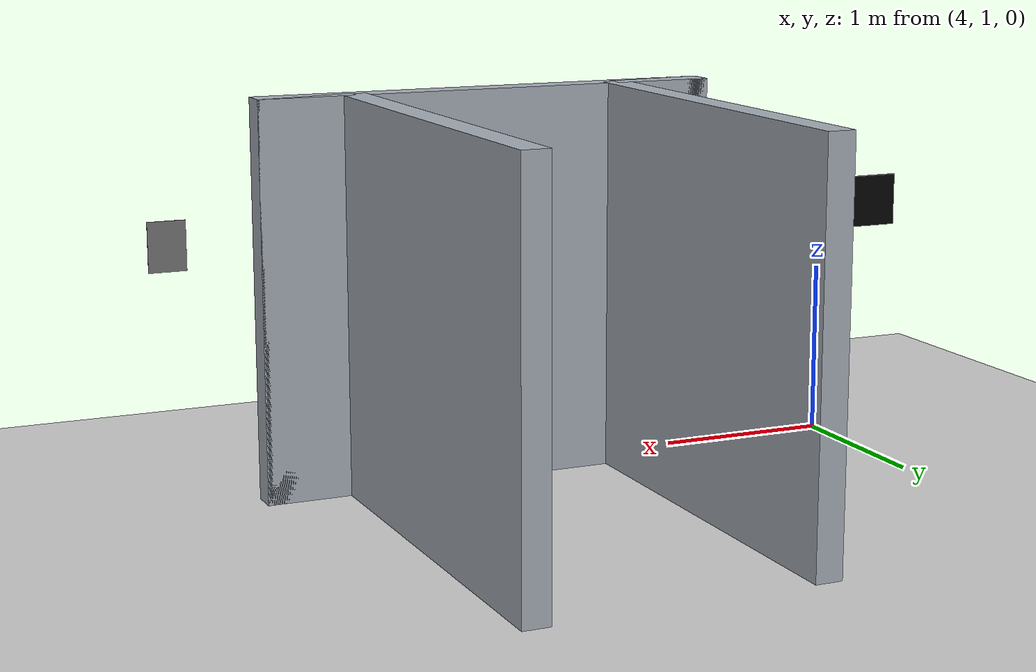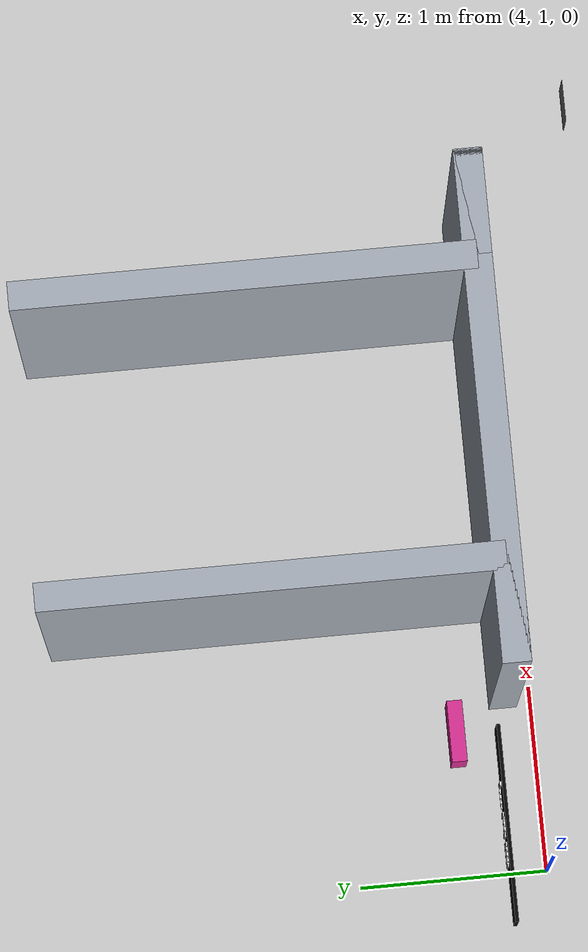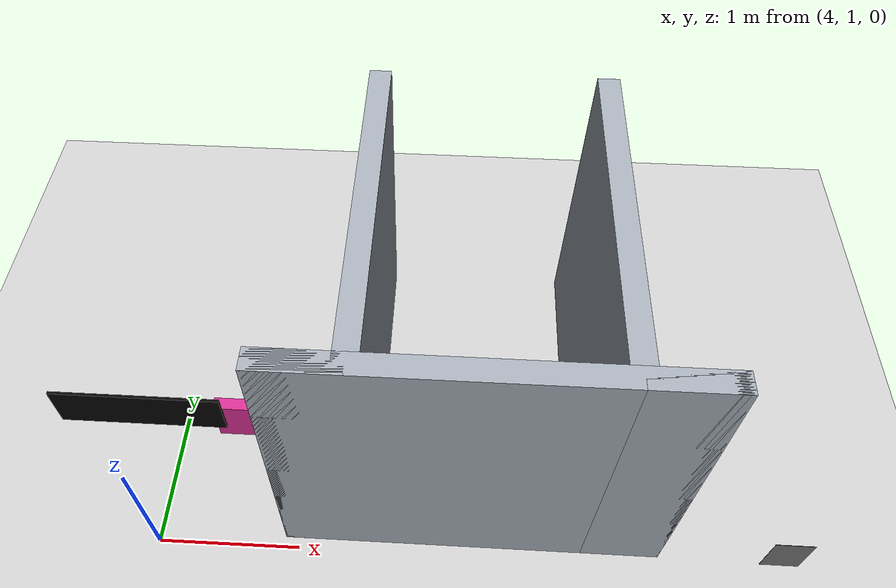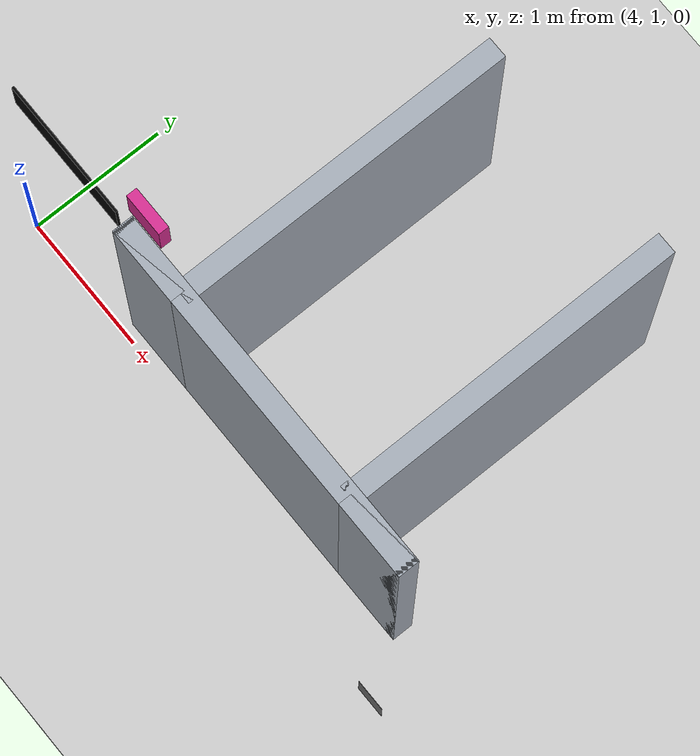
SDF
<sdf version="1.9">
 <world name="default">
  <model name="ground_plane">
   <static>true</static>
   <pose>5.15 0 -0.05 0 0 0</pose>
   <link name="body">
    <collision name="collision"><geometry><box><size>14.3 12 0.1</size></box></geometry></collision>
    <visual name="visual">
     <geometry><box><size>14.3 12 0.1</size></box></geometry>
     <material><ambient>0.8 0.8 0.8 1</ambient><diffuse>0.8 0.8 0.8 1</diffuse></material>
    </visual>
   </link>
  </model>
  <model name="room_1_1_1">
   <static>true</static>
   <pose>5.45 2.3499999999999996 1.1 0 0 0</pose>
   <link name="body">
    <collision name="collision"><geometry><box><size>0.15 2.4 2.2</size></box></geometry></collision>
    <visual name="visual">
     <geometry><box><size>0.15 2.4 2.2</size></box></geometry>
     <material><ambient>0.65 0.68 0.72 1</ambient><diffuse>0.65 0.68 0.72 1</diffuse></material>
    </visual>
   </link>
  </model>
  <model name="jamb_1_1_1">
   <static>true</static>
   <pose>5.175000000000001 1.15 1.1 0 0 0</pose>
   <link name="body">
    <collision name="collision"><geometry><box><size>0.55 0.15 2.2</size></box></geometry></collision>
    <visual name="visual">
     <geometry><box><size>0.55 0.15 2.2</size></box></geometry>
     <material><ambient>0.65 0.68 0.72 1</ambient><diffuse>0.65 0.68 0.72 1</diffuse></material>
    </visual>
   </link>
  </model>
  <model name="hall_1_2">
   <static>true</static>
   <pose>6.2250000000000005 1.15 1.1 0 0 0</pose>
   <link name="body">
    <collision name="collision">
     <geometry><box><size>2.6500000000000004 0.15 2.2</size></box></geometry>
    </collision>
    <visual name="visual">
     <geometry><box><size>2.6500000000000004 0.15 2.2</size></box></geometry>
     <material><ambient>0.65 0.68 0.72 1</ambient><diffuse>0.65 0.68 0.72 1</diffuse></material>
    </visual>
   </link>
  </model>
  <model name="room_1_2_-1">
   <static>true</static>
   <pose>7.000000000000001 2.3499999999999996 1.1 0 0 0</pose>
   <link name="body">
    <collision name="collision"><geometry><box><size>0.15 2.4 2.2</size></box></geometry></collision>
    <visual name="visual">
     <geometry><box><size>0.15 2.4 2.2</size></box></geometry>
     <material><ambient>0.65 0.68 0.72 1</ambient><diffuse>0.65 0.68 0.72 1</diffuse></material>
    </visual>
   </link>
  </model>
  <model name="jamb_1_2_-1">
   <static>true</static>
   <pose>7.275 1.15 1.1 0 0 0</pose>
   <link name="body">
    <collision name="collision"><geometry><box><size>0.55 0.15 2.2</size></box></geometry></collision>
    <visual name="visual">
     <geometry><box><size>0.55 0.15 2.2</size></box></geometry>
     <material><ambient>0.65 0.68 0.72 1</ambient><diffuse>0.65 0.68 0.72 1</diffuse></material>
    </visual>
   </link>
  </model>
  <model name="r3geo_base_r009_left_1_entrance_sign">
   <static>true</static>
   <pose>4.680000000000001 1.45 1.05 0 0 0</pose>
   <link name="body">
    <visual name="visual">
     <geometry><box><size>0.32 0.08 0.32</size></box></geometry>
     <material><ambient>0.84 0.18 0.57 1</ambient><diffuse>0.84 0.18 0.57 1</diffuse></material>
    </visual>
   </link>
  </model>
  <model name="readable_r3geo_base_r009_left_1_entrance_room">
   <static>true</static>
   <pose>4.15 1.25 1.43 0 0 3.14159265359</pose>
   <link name="lettering">
    <visual name="backboard">
     <geometry><box><size>1.02 0.018 0.3</size></box></geometry>
     <material>
      <ambient>.015 .015 .015 1</ambient>
      <diffuse>.015 .015 .015 1</diffuse>
      <emissive>.015 .015 .015 1</emissive>
     </material>
     <cast_shadows>false</cast_shadows>
    </visual>
    <visual name="letter_0_0_0">
     <pose>-0.208 -0.014 0.078 0 0 0</pose>
     <geometry><box><size>0.024439999999999996 0.008 0.024439999999999996</size></box></geometry>
     <material>
      <ambient>.96 .96 .96 1</ambient>
      <diffuse>.96 .96 .96 1</diffuse>
      <emissive>.96 .96 .96 1</emissive>
     </material>
     <cast_shadows>false</cast_shadows>
    </visual>
    <visual name="letter_0_1_0">
     <pose>-0.208 -0.014 0.052 0 0 0</pose>
     <geometry><box><size>0.024439999999999996 0.008 0.024439999999999996</size></box></geometry>
     <material>
      <ambient>.96 .96 .96 1</ambient>
      <diffuse>.96 .96 .96 1</diffuse>
      <emissive>.96 .96 .96 1</emissive>
     </material>
     <cast_shadows>false</cast_shadows>
    </visual>
    <visual name="letter_0_2_0">
     <pose>-0.208 -0.014 0.026 0 0 0</pose>
     <geometry><box><size>0.024439999999999996 0.008 0.024439999999999996</size></box></geometry>
     <material>
      <ambient>.96 .96 .96 1</ambient>
      <diffuse>.96 .96 .96 1</diffuse>
      <emissive>.96 .96 .96 1</emissive>
     </material>
     <cast_shadows>false</cast_shadows>
    </visual>
    <visual name="letter_0_3_0">
     <pose>-0.208 -0.014 0 0 0 0</pose>
     <geometry><box><size>0.024439999999999996 0.008 0.024439999999999996</size></box></geometry>
     <material>
      <ambient>.96 .96 .96 1</ambient>
      <diffuse>.96 .96 .96 1</diffuse>
      <emissive>.96 .96 .96 1</emissive>
     </material>
     <cast_shadows>false</cast_shadows>
    </visual>
    <visual name="letter_0_4_0">
     <pose>-0.208 -0.014 -0.026 0 0 0</pose>
     <geometry><box><size>0.024439999999999996 0.008 0.024439999999999996</size></box></geometry>
     <material>
      <ambient>.96 .96 .96 1</ambient>
      <diffuse>.96 .96 .96 1</diffuse>
      <emissive>.96 .96 .96 1</emissive>
     </material>
     <cast_shadows>false</cast_shadows>
    </visual>
    <visual name="letter_0_5_0">
     <pose>-0.208 -0.014 -0.052 0 0 0</pose>
     <geometry><box><size>0.024439999999999996 0.008 0.024439999999999996</size></box></geometry>
     <material>
      <ambient>.96 .96 .96 1</ambient>
      <diffuse>.96 .96 .96 1</diffuse>
      <emissive>.96 .96 .96 1</emissive>
     </material>
     <cast_shadows>false</cast_shadows>
    </visual>
    <visual name="letter_0_6_0">
     <pose>-0.208 -0.014 -0.078 0 0 0</pose>
     <geometry><box><size>0.024439999999999996 0.008 0.024439999999999996</size></box></geometry>
     <material>
      <ambient>.96 .96 .96 1</ambient>
      <diffuse>.96 .96 .96 1</diffuse>
      <emissive>.96 .96 .96 1</emissive>
     </material>
     <cast_shadows>false</cast_shadows>
    </visual>
    <visual name="letter_0_6_1">
     <pose>-0.182 -0.014 -0.078 0 0 0</pose>
     <geometry><box><size>0.024439999999999996 0.008 0.024439999999999996</size></box></geometry>
     <material>
      <ambient>.96 .96 .96 1</ambient>
      <diffuse>.96 .96 .96 1</diffuse>
      <emissive>.96 .96 .96 1</emissive>
     </material>
     <cast_shadows>false</cast_shadows>
    </visual>
    <visual name="letter_0_6_2">
     <pose>-0.156 -0.014 -0.078 0 0 0</pose>
     <geometry><box><size>0.024439999999999996 0.008 0.024439999999999996</size></box></geometry>
     <material>
      <ambient>.96 .96 .96 1</ambient>
      <diffuse>.96 .96 .96 1</diffuse>
      <emissive>.96 .96 .96 1</emissive>
     </material>
     <cast_shadows>false</cast_shadows>
    </visual>
    <visual name="letter_0_6_3">
     <pose>-0.13 -0.014 -0.078 0 0 0</pose>
     <geometry><box><size>0.024439999999999996 0.008 0.024439999999999996</size></box></geometry>
     <material>
      <ambient>.96 .96 .96 1</ambient>
      <diffuse>.96 .96 .96 1</diffuse>
      <emissive>.96 .96 .96 1</emissive>
     </material>
     <cast_shadows>false</cast_shadows>
    </visual>
    <visual name="letter_0_6_4">
     <pose>-0.104 -0.014 -0.078 0 0 0</pose>
     <geometry><box><size>0.024439999999999996 0.008 0.024439999999999996</size></box></geometry>
     <material>
      <ambient>.96 .96 .96 1</ambient>
      <diffuse>.96 .96 .96 1</diffuse>
      <emissive>.96 .96 .96 1</emissive>
     </material>
     <cast_shadows>false</cast_shadows>
    </visual>
    <visual name="letter_1_0_1">
     <pose>-0.026 -0.014 0.078 0 0 0</pose>
     <geometry><box><size>0.024439999999999996 0.008 0.024439999999999996</size></box></geometry>
     <material>
      <ambient>.96 .96 .96 1</ambient>
      <diffuse>.96 .96 .96 1</diffuse>
      <emissive>.96 .96 .96 1</emissive>
     </material>
     <cast_shadows>false</cast_shadows>
    </visual>
    <visual name="letter_1_0_2">
     <pose>0 -0.014 0.078 0 0 0</pose>
     <geometry><box><size>0.024439999999999996 0.008 0.024439999999999996</size></box></geometry>
     <material>
      <ambient>.96 .96 .96 1</ambient>
      <diffuse>.96 .96 .96 1</diffuse>
      <emissive>.96 .96 .96 1</emissive>
     </material>
     <cast_shadows>false</cast_shadows>
    </visual>
    <visual name="letter_1_0_3">
     <pose>0.026 -0.014 0.078 0 0 0</pose>
     <geometry><box><size>0.024439999999999996 0.008 0.024439999999999996</size></box></geometry>
     <material>
      <ambient>.96 .96 .96 1</ambient>
      <diffuse>.96 .96 .96 1</diffuse>
      <emissive>.96 .96 .96 1</emissive>
     </material>
     <cast_shadows>false</cast_shadows>
    </visual>
    <visual name="letter_1_1_0">
     <pose>-0.052 -0.014 0.052 0 0 0</pose>
     <geometry><box><size>0.024439999999999996 0.008 0.024439999999999996</size></box></geometry>
     <material>
      <ambient>.96 .96 .96 1</ambient>
      <diffuse>.96 .96 .96 1</diffuse>
      <emissive>.96 .96 .96 1</emissive>
     </material>
     <cast_shadows>false</cast_shadows>
    </visual>
    <visual name="letter_1_1_4">
     <pose>0.052 -0.014 0.052 0 0 0</pose>
     <geometry><box><size>0.024439999999999996 0.008 0.024439999999999996</size></box></geometry>
     <material>
      <ambient>.96 .96 .96 1</ambient>
      <diffuse>.96 .96 .96 1</diffuse>
      <emissive>.96 .96 .96 1</emissive>
     </material>
     <cast_shadows>false</cast_shadows>
    </visual>
    <visual name="letter_1_2_0">
     <pose>-0.052 -0.014 0.026 0 0 0</pose>
     <geometry><box><size>0.024439999999999996 0.008 0.024439999999999996</size></box></geometry>
     <material>
      <ambient>.96 .96 .96 1</ambient>
      <diffuse>.96 .96 .96 1</diffuse>
      <emissive>.96 .96 .96 1</emissive>
     </material>
     <cast_shadows>false</cast_shadows>
    </visual>
    <visual name="letter_1_2_4">
     <pose>0.052 -0.014 0.026 0 0 0</pose>
     <geometry><box><size>0.024439999999999996 0.008 0.024439999999999996</size></box></geometry>
     <material>
      <ambient>.96 .96 .96 1</ambient>
      <diffuse>.96 .96 .96 1</diffuse>
      <emissive>.96 .96 .96 1</emissive>
     </material>
     <cast_shadows>false</cast_shadows>
    </visual>
    <visual name="letter_1_3_0">
     <pose>-0.052 -0.014 0 0 0 0</pose>
     <geometry><box><size>0.024439999999999996 0.008 0.024439999999999996</size></box></geometry>
     <material>
      <ambient>.96 .96 .96 1</ambient>
      <diffuse>.96 .96 .96 1</diffuse>
      <emissive>.96 .96 .96 1</emissive>
     </material>
     <cast_shadows>false</cast_shadows>
    </visual>
    <visual name="letter_1_3_1">
     <pose>-0.026 -0.014 0 0 0 0</pose>
     <geometry><box><size>0.024439999999999996 0.008 0.024439999999999996</size></box></geometry>
     <material>
      <ambient>.96 .96 .96 1</ambient>
      <diffuse>.96 .96 .96 1</diffuse>
      <emissive>.96 .96 .96 1</emissive>
     </material>
     <cast_shadows>false</cast_shadows>
    </visual>
    <visual name="letter_1_3_2">
     <pose>0 -0.014 0 0 0 0</pose>
     <geometry><box><size>0.024439999999999996 0.008 0.024439999999999996</size></box></geometry>
     <material>
      <ambient>.96 .96 .96 1</ambient>
      <diffuse>.96 .96 .96 1</diffuse>
      <emissive>.96 .96 .96 1</emissive>
     </material>
     <cast_shadows>false</cast_shadows>
    </visual>
    <visual name="letter_1_3_3">
     <pose>0.026 -0.014 0 0 0 0</pose>
     <geometry><box><size>0.024439999999999996 0.008 0.024439999999999996</size></box></geometry>
     <material>
      <ambient>.96 .96 .96 1</ambient>
      <diffuse>.96 .96 .96 1</diffuse>
      <emissive>.96 .96 .96 1</emissive>
     </material>
     <cast_shadows>false</cast_shadows>
    </visual>
    <visual name="letter_1_3_4">
     <pose>0.052 -0.014 0 0 0 0</pose>
     <geometry><box><size>0.024439999999999996 0.008 0.024439999999999996</size></box></geometry>
     <material>
      <ambient>.96 .96 .96 1</ambient>
      <diffuse>.96 .96 .96 1</diffuse>
      <emissive>.96 .96 .96 1</emissive>
     </material>
     <cast_shadows>false</cast_shadows>
    </visual>
    <visual name="letter_1_4_0">
     <pose>-0.052 -0.014 -0.026 0 0 0</pose>
     <geometry><box><size>0.024439999999999996 0.008 0.024439999999999996</size></box></geometry>
     <material>
      <ambient>.96 .96 .96 1</ambient>
      <diffuse>.96 .96 .96 1</diffuse>
      <emissive>.96 .96 .96 1</emissive>
     </material>
     <cast_shadows>false</cast_shadows>
    </visual>
    <visual name="letter_1_4_4">
     <pose>0.052 -0.014 -0.026 0 0 0</pose>
     <geometry><box><size>0.024439999999999996 0.008 0.024439999999999996</size></box></geometry>
     <material>
      <ambient>.96 .96 .96 1</ambient>
      <diffuse>.96 .96 .96 1</diffuse>
      <emissive>.96 .96 .96 1</emissive>
     </material>
     <cast_shadows>false</cast_shadows>
    </visual>
    <visual name="letter_1_5_0">
     <pose>-0.052 -0.014 -0.052 0 0 0</pose>
     <geometry><box><size>0.024439999999999996 0.008 0.024439999999999996</size></box></geometry>
     <material>
      <ambient>.96 .96 .96 1</ambient>
      <diffuse>.96 .96 .96 1</diffuse>
      <emissive>.96 .96 .96 1</emissive>
     </material>
     <cast_shadows>false</cast_shadows>
    </visual>
    <visual name="letter_1_5_4">
     <pose>0.052 -0.014 -0.052 0 0 0</pose>
     <geometry><box><size>0.024439999999999996 0.008 0.024439999999999996</size></box></geometry>
     <material>
      <ambient>.96 .96 .96 1</ambient>
      <diffuse>.96 .96 .96 1</diffuse>
      <emissive>.96 .96 .96 1</emissive>
     </material>
     <cast_shadows>false</cast_shadows>
    </visual>
    <visual name="letter_1_6_0">
     <pose>-0.052 -0.014 -0.078 0 0 0</pose>
     <geometry><box><size>0.024439999999999996 0.008 0.024439999999999996</size></box></geometry>
     <material>
      <ambient>.96 .96 .96 1</ambient>
      <diffuse>.96 .96 .96 1</diffuse>
      <emissive>.96 .96 .96 1</emissive>
     </material>
     <cast_shadows>false</cast_shadows>
    </visual>
    <visual name="letter_1_6_4">
     <pose>0.052 -0.014 -0.078 0 0 0</pose>
     <geometry><box><size>0.024439999999999996 0.008 0.024439999999999996</size></box></geometry>
     <material>
      <ambient>.96 .96 .96 1</ambient>
      <diffuse>.96 .96 .96 1</diffuse>
      <emissive>.96 .96 .96 1</emissive>
     </material>
     <cast_shadows>false</cast_shadows>
    </visual>
    <visual name="letter_2_0_0">
     <pose>0.104 -0.014 0.078 0 0 0</pose>
     <geometry><box><size>0.024439999999999996 0.008 0.024439999999999996</size></box></geometry>
     <material>
      <ambient>.96 .96 .96 1</ambient>
      <diffuse>.96 .96 .96 1</diffuse>
      <emissive>.96 .96 .96 1</emissive>
     </material>
     <cast_shadows>false</cast_shadows>
    </visual>
    <visual name="letter_2_0_1">
     <pose>0.13 -0.014 0.078 0 0 0</pose>
     <geometry><box><size>0.024439999999999996 0.008 0.024439999999999996</size></box></geometry>
     <material>
      <ambient>.96 .96 .96 1</ambient>
      <diffuse>.96 .96 .96 1</diffuse>
      <emissive>.96 .96 .96 1</emissive>
     </material>
     <cast_shadows>false</cast_shadows>
    </visual>
    <visual name="letter_2_0_2">
     <pose>0.156 -0.014 0.078 0 0 0</pose>
     <geometry><box><size>0.024439999999999996 0.008 0.024439999999999996</size></box></geometry>
     <material>
      <ambient>.96 .96 .96 1</ambient>
      <diffuse>.96 .96 .96 1</diffuse>
      <emissive>.96 .96 .96 1</emissive>
     </material>
     <cast_shadows>false</cast_shadows>
    </visual>
    <visual name="letter_2_0_3">
     <pose>0.182 -0.014 0.078 0 0 0</pose>
     <geometry><box><size>0.024439999999999996 0.008 0.024439999999999996</size></box></geometry>
     <material>
      <ambient>.96 .96 .96 1</ambient>
      <diffuse>.96 .96 .96 1</diffuse>
      <emissive>.96 .96 .96 1</emissive>
     </material>
     <cast_shadows>false</cast_shadows>
    </visual>
    <visual name="letter_2_1_0">
     <pose>0.104 -0.014 0.052 0 0 0</pose>
     <geometry><box><size>0.024439999999999996 0.008 0.024439999999999996</size></box></geometry>
     <material>
      <ambient>.96 .96 .96 1</ambient>
      <diffuse>.96 .96 .96 1</diffuse>
      <emissive>.96 .96 .96 1</emissive>
     </material>
     <cast_shadows>false</cast_shadows>
    </visual>
    <visual name="letter_2_1_4">
     <pose>0.208 -0.014 0.052 0 0 0</pose>
     <geometry><box><size>0.024439999999999996 0.008 0.024439999999999996</size></box></geometry>
     <material>
      <ambient>.96 .96 .96 1</ambient>
      <diffuse>.96 .96 .96 1</diffuse>
      <emissive>.96 .96 .96 1</emissive>
     </material>
     <cast_shadows>false</cast_shadows>
    </visual>
    <visual name="letter_2_2_0">
     <pose>0.104 -0.014 0.026 0 0 0</pose>
     <geometry><box><size>0.024439999999999996 0.008 0.024439999999999996</size></box></geometry>
     <material>
      <ambient>.96 .96 .96 1</ambient>
      <diffuse>.96 .96 .96 1</diffuse>
      <emissive>.96 .96 .96 1</emissive>
     </material>
     <cast_shadows>false</cast_shadows>
    </visual>
    <visual name="letter_2_2_4">
     <pose>0.208 -0.014 0.026 0 0 0</pose>
     <geometry><box><size>0.024439999999999996 0.008 0.024439999999999996</size></box></geometry>
     <material>
      <ambient>.96 .96 .96 1</ambient>
      <diffuse>.96 .96 .96 1</diffuse>
      <emissive>.96 .96 .96 1</emissive>
     </material>
     <cast_shadows>false</cast_shadows>
    </visual>
    <visual name="letter_2_3_0">
     <pose>0.104 -0.014 0 0 0 0</pose>
     <geometry><box><size>0.024439999999999996 0.008 0.024439999999999996</size></box></geometry>
     <material>
      <ambient>.96 .96 .96 1</ambient>
      <diffuse>.96 .96 .96 1</diffuse>
      <emissive>.96 .96 .96 1</emissive>
     </material>
     <cast_shadows>false</cast_shadows>
    </visual>
    <visual name="letter_2_3_1">
     <pose>0.13 -0.014 0 0 0 0</pose>
     <geometry><box><size>0.024439999999999996 0.008 0.024439999999999996</size></box></geometry>
     <material>
      <ambient>.96 .96 .96 1</ambient>
      <diffuse>.96 .96 .96 1</diffuse>
      <emissive>.96 .96 .96 1</emissive>
     </material>
     <cast_shadows>false</cast_shadows>
    </visual>
    <visual name="letter_2_3_2">
     <pose>0.156 -0.014 0 0 0 0</pose>
     <geometry><box><size>0.024439999999999996 0.008 0.024439999999999996</size></box></geometry>
     <material>
      <ambient>.96 .96 .96 1</ambient>
      <diffuse>.96 .96 .96 1</diffuse>
      <emissive>.96 .96 .96 1</emissive>
     </material>
     <cast_shadows>false</cast_shadows>
    </visual>
    <visual name="letter_2_3_3">
     <pose>0.182 -0.014 0 0 0 0</pose>
     <geometry><box><size>0.024439999999999996 0.008 0.024439999999999996</size></box></geometry>
     <material>
      <ambient>.96 .96 .96 1</ambient>
      <diffuse>.96 .96 .96 1</diffuse>
      <emissive>.96 .96 .96 1</emissive>
     </material>
     <cast_shadows>false</cast_shadows>
    </visual>
    <visual name="letter_2_4_0">
     <pose>0.104 -0.014 -0.026 0 0 0</pose>
     <geometry><box><size>0.024439999999999996 0.008 0.024439999999999996</size></box></geometry>
     <material>
      <ambient>.96 .96 .96 1</ambient>
      <diffuse>.96 .96 .96 1</diffuse>
      <emissive>.96 .96 .96 1</emissive>
     </material>
     <cast_shadows>false</cast_shadows>
    </visual>
    <visual name="letter_2_4_4">
     <pose>0.208 -0.014 -0.026 0 0 0</pose>
     <geometry><box><size>0.024439999999999996 0.008 0.024439999999999996</size></box></geometry>
     <material>
      <ambient>.96 .96 .96 1</ambient>
      <diffuse>.96 .96 .96 1</diffuse>
      <emissive>.96 .96 .96 1</emissive>
     </material>
     <cast_shadows>false</cast_shadows>
    </visual>
    <visual name="letter_2_5_0">
     <pose>0.104 -0.014 -0.052 0 0 0</pose>
     <geometry><box><size>0.024439999999999996 0.008 0.024439999999999996</size></box></geometry>
     <material>
      <ambient>.96 .96 .96 1</ambient>
      <diffuse>.96 .96 .96 1</diffuse>
      <emissive>.96 .96 .96 1</emissive>
     </material>
     <cast_shadows>false</cast_shadows>
    </visual>
    <visual name="letter_2_5_4">
     <pose>0.208 -0.014 -0.052 0 0 0</pose>
     <geometry><box><size>0.024439999999999996 0.008 0.024439999999999996</size></box></geometry>
     <material>
      <ambient>.96 .96 .96 1</ambient>
      <diffuse>.96 .96 .96 1</diffuse>
      <emissive>.96 .96 .96 1</emissive>
     </material>
     <cast_shadows>false</cast_shadows>
    </visual>
    <visual name="letter_2_6_0">
     <pose>0.104 -0.014 -0.078 0 0 0</pose>
     <geometry><box><size>0.024439999999999996 0.008 0.024439999999999996</size></box></geometry>
     <material>
      <ambient>.96 .96 .96 1</ambient>
      <diffuse>.96 .96 .96 1</diffuse>
      <emissive>.96 .96 .96 1</emissive>
     </material>
     <cast_shadows>false</cast_shadows>
    </visual>
    <visual name="letter_2_6_1">
     <pose>0.13 -0.014 -0.078 0 0 0</pose>
     <geometry><box><size>0.024439999999999996 0.008 0.024439999999999996</size></box></geometry>
     <material>
      <ambient>.96 .96 .96 1</ambient>
      <diffuse>.96 .96 .96 1</diffuse>
      <emissive>.96 .96 .96 1</emissive>
     </material>
     <cast_shadows>false</cast_shadows>
    </visual>
    <visual name="letter_2_6_2">
     <pose>0.156 -0.014 -0.078 0 0 0</pose>
     <geometry><box><size>0.024439999999999996 0.008 0.024439999999999996</size></box></geometry>
     <material>
      <ambient>.96 .96 .96 1</ambient>
      <diffuse>.96 .96 .96 1</diffuse>
      <emissive>.96 .96 .96 1</emissive>
     </material>
     <cast_shadows>false</cast_shadows>
    </visual>
    <visual name="letter_2_6_3">
     <pose>0.182 -0.014 -0.078 0 0 0</pose>
     <geometry><box><size>0.024439999999999996 0.008 0.024439999999999996</size></box></geometry>
     <material>
      <ambient>.96 .96 .96 1</ambient>
      <diffuse>.96 .96 .96 1</diffuse>
      <emissive>.96 .96 .96 1</emissive>
     </material>
     <cast_shadows>false</cast_shadows>
    </visual>
   </link>
  </model>
  <model name="expansion_occluder_r3geo_base_r009_left_2_doorway">
   <static>true</static>
   <pose>7.894464658991354 0.5899240655583882 1.3453572179546072 -1.57 -1.5932350924674488e-16 0.0007963267948962998</pose>
   <link name="visual_only">
    <visual name="neutral_occluder">
     <geometry><box><size>0.2159099131007194 0.2841465939284625 0.002</size></box></geometry>
     <material><ambient>.45 .45 .45 1</ambient><diffuse>.45 .45 .45 1</diffuse></material>
     <cast_shadows>false</cast_shadows>
    </visual>
   </link>
  </model>
 </world>
</sdf>
